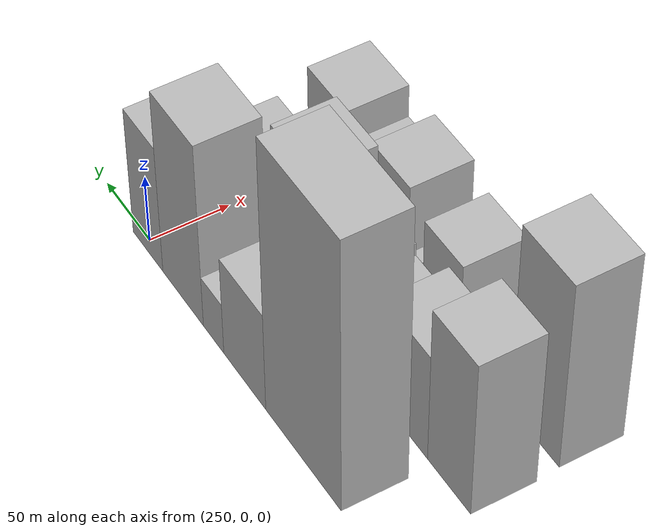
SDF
<sdf version="1.6">
 <world name="default">
  <model name="building_173">
   <static>1</static>
   <pose>265.0000 -174.7765 0 0.000000 0.000000 0.000000</pose>
   <link name="link">
    <pose>0 0 102.00 0 0 0</pose>
    <collision name="collision"><geometry><box><size>40.0000 76.4953 204.0000</size></box></geometry></collision>
    <visual name="visual">
     <cast_shadows>0</cast_shadows>
     <geometry><box><size>40.0000 76.4953 204.0000</size></box></geometry>
     <material>
      <script>
       <uri>model://HANNAS_wall/materials/scripts</uri>
       <uri>model://HANNAS_wall/materials/textures</uri>
       <name>vrc/HANNAS_wall</name>
      </script>
     </material>
    </visual>
   </link>
  </model>
  <model name="building_174">
   <static>1</static>
   <pose>265.0000 -114.1922 0 0.000000 0.000000 0.000000</pose>
   <link name="link">
    <pose>0 0 37.50 0 0 0</pose>
    <collision name="collision"><geometry><box><size>40.0000 44.6733 75.0000</size></box></geometry></collision>
    <visual name="visual">
     <cast_shadows>0</cast_shadows>
     <geometry><box><size>40.0000 44.6733 75.0000</size></box></geometry>
     <material>
      <script>
       <uri>model://HANNAS_wall/materials/scripts</uri>
       <uri>model://HANNAS_wall/materials/textures</uri>
       <name>vrc/HANNAS_wall</name>
      </script>
     </material>
    </visual>
   </link>
  </model>
  <model name="building_175">
   <static>1</static>
   <pose>265.0000 -80.7296 0 0.000000 0.000000 0.000000</pose>
   <link name="link">
    <pose>0 0 19.50 0 0 0</pose>
    <collision name="collision"><geometry><box><size>40.0000 22.2520 39.0000</size></box></geometry></collision>
    <visual name="visual">
     <cast_shadows>0</cast_shadows>
     <geometry><box><size>40.0000 22.2520 39.0000</size></box></geometry>
     <material>
      <script>
       <uri>model://HANNAS_wall/materials/scripts</uri>
       <uri>model://HANNAS_wall/materials/textures</uri>
       <name>vrc/HANNAS_wall</name>
      </script>
     </material>
    </visual>
   </link>
  </model>
  <model name="building_176">
   <static>1</static>
   <pose>265.0000 -46.8801 0 0.000000 0.000000 0.000000</pose>
   <link name="link">
    <pose>0 0 69.00 0 0 0</pose>
    <collision name="collision"><geometry><box><size>40.0000 45.4469 138.0000</size></box></geometry></collision>
    <visual name="visual">
     <cast_shadows>0</cast_shadows>
     <geometry><box><size>40.0000 45.4469 138.0000</size></box></geometry>
     <material>
      <script>
       <uri>model://HANNAS_wall/materials/scripts</uri>
       <uri>model://HANNAS_wall/materials/textures</uri>
       <name>vrc/HANNAS_wall</name>
      </script>
     </material>
    </visual>
   </link>
  </model>
  <model name="building_177">
   <static>1</static>
   <pose>265.0000 -7.0265 0 0.000000 0.000000 0.000000</pose>
   <link name="link">
    <pose>0 0 48.00 0 0 0</pose>
    <collision name="collision"><geometry><box><size>40.0000 34.2604 96.0000</size></box></geometry></collision>
    <visual name="visual">
     <cast_shadows>0</cast_shadows>
     <geometry><box><size>40.0000 34.2604 96.0000</size></box></geometry>
     <material>
      <script>
       <uri>model://HANNAS_wall/materials/scripts</uri>
       <uri>model://HANNAS_wall/materials/textures</uri>
       <name>vrc/HANNAS_wall</name>
      </script>
     </material>
    </visual>
   </link>
  </model>
  <model name="building_225">
   <static>1</static>
   <pose>320.0000 -228.0271 0 0.000000 0.000000 0.000000</pose>
   <link name="link">
    <pose>0 0 58.50 0 0 0</pose>
    <collision name="collision"><geometry><box><size>40.0000 41.0480 117.0000</size></box></geometry></collision>
    <visual name="visual">
     <cast_shadows>0</cast_shadows>
     <geometry><box><size>40.0000 41.0480 117.0000</size></box></geometry>
     <material>
      <script>
       <uri>model://HANNAS_wall/materials/scripts</uri>
       <uri>model://HANNAS_wall/materials/textures</uri>
       <name>vrc/HANNAS_wall</name>
      </script>
     </material>
    </visual>
   </link>
  </model>
  <model name="building_226">
   <static>1</static>
   <pose>320.0000 -184.4851 0 0.000000 0.000000 0.000000</pose>
   <link name="link">
    <pose>0 0 40.50 0 0 0</pose>
    <collision name="collision"><geometry><box><size>40.0000 46.0360 81.0000</size></box></geometry></collision>
    <visual name="visual">
     <cast_shadows>0</cast_shadows>
     <geometry><box><size>40.0000 46.0360 81.0000</size></box></geometry>
     <material>
      <script>
       <uri>model://HANNAS_wall/materials/scripts</uri>
       <uri>model://HANNAS_wall/materials/textures</uri>
       <name>vrc/HANNAS_wall</name>
      </script>
     </material>
    </visual>
   </link>
  </model>
  <model name="building_227">
   <static>1</static>
   <pose>320.0000 -145.9208 0 0.000000 0.000000 0.000000</pose>
   <link name="link">
    <pose>0 0 30.00 0 0 0</pose>
    <collision name="collision"><geometry><box><size>40.0000 31.0925 60.0000</size></box></geometry></collision>
    <visual name="visual">
     <cast_shadows>0</cast_shadows>
     <geometry><box><size>40.0000 31.0925 60.0000</size></box></geometry>
     <material>
      <script>
       <uri>model://HANNAS_wall/materials/scripts</uri>
       <uri>model://HANNAS_wall/materials/textures</uri>
       <name>vrc/HANNAS_wall</name>
      </script>
     </material>
    </visual>
   </link>
  </model>
  <model name="building_228">
   <static>1</static>
   <pose>320.0000 -111.3155 0 0.000000 0.000000 0.000000</pose>
   <link name="link">
    <pose>0 0 34.50 0 0 0</pose>
    <collision name="collision"><geometry><box><size>40.0000 38.1181 69.0000</size></box></geometry></collision>
    <visual name="visual">
     <cast_shadows>0</cast_shadows>
     <geometry><box><size>40.0000 38.1181 69.0000</size></box></geometry>
     <material>
      <script>
       <uri>model://HANNAS_wall/materials/scripts</uri>
       <uri>model://HANNAS_wall/materials/textures</uri>
       <name>vrc/HANNAS_wall</name>
      </script>
     </material>
    </visual>
   </link>
  </model>
  <model name="building_229">
   <static>1</static>
   <pose>320.0000 -71.3849 0 0.000000 0.000000 0.000000</pose>
   <link name="link">
    <pose>0 0 54.00 0 0 0</pose>
    <collision name="collision"><geometry><box><size>40.0000 41.7433 108.0000</size></box></geometry></collision>
    <visual name="visual">
     <cast_shadows>0</cast_shadows>
     <geometry><box><size>40.0000 41.7433 108.0000</size></box></geometry>
     <material>
      <script>
       <uri>model://HANNAS_wall/materials/scripts</uri>
       <uri>model://HANNAS_wall/materials/textures</uri>
       <name>vrc/HANNAS_wall</name>
      </script>
     </material>
    </visual>
   </link>
  </model>
  <model name="building_230">
   <static>1</static>
   <pose>320.0000 -37.9559 0 0.000000 0.000000 0.000000</pose>
   <link name="link">
    <pose>0 0 24.00 0 0 0</pose>
    <collision name="collision"><geometry><box><size>40.0000 25.1147 48.0000</size></box></geometry></collision>
    <visual name="visual">
     <cast_shadows>0</cast_shadows>
     <geometry><box><size>40.0000 25.1147 48.0000</size></box></geometry>
     <material>
      <script>
       <uri>model://HANNAS_wall/materials/scripts</uri>
       <uri>model://HANNAS_wall/materials/textures</uri>
       <name>vrc/HANNAS_wall</name>
      </script>
     </material>
    </visual>
   </link>
  </model>
  <model name="building_231">
   <static>1</static>
   <pose>320.0000 -2.0353 0 0.000000 0.000000 0.000000</pose>
   <link name="link">
    <pose>0 0 27.00 0 0 0</pose>
    <collision name="collision"><geometry><box><size>40.0000 30.7263 54.0000</size></box></geometry></collision>
    <visual name="visual">
     <cast_shadows>0</cast_shadows>
     <geometry><box><size>40.0000 30.7263 54.0000</size></box></geometry>
     <material>
      <script>
       <uri>model://HANNAS_wall/materials/scripts</uri>
       <uri>model://HANNAS_wall/materials/textures</uri>
       <name>vrc/HANNAS_wall</name>
      </script>
     </material>
    </visual>
   </link>
  </model>
  <model name="building_275">
   <static>1</static>
   <pose>375.0000 -223.9881 0 0.000000 0.000000 0.000000</pose>
   <link name="link">
    <pose>0 0 70.50 0 0 0</pose>
    <collision name="collision"><geometry><box><size>40.0000 45.9052 141.0000</size></box></geometry></collision>
    <visual name="visual">
     <cast_shadows>0</cast_shadows>
     <geometry><box><size>40.0000 45.9052 141.0000</size></box></geometry>
     <material>
      <script>
       <uri>model://HANNAS_wall/materials/scripts</uri>
       <uri>model://HANNAS_wall/materials/textures</uri>
       <name>vrc/HANNAS_wall</name>
      </script>
     </material>
    </visual>
   </link>
  </model>
  <model name="building_276">
   <static>1</static>
   <pose>375.0000 -180.3613 0 0.000000 0.000000 0.000000</pose>
   <link name="link">
    <pose>0 0 19.50 0 0 0</pose>
    <collision name="collision"><geometry><box><size>40.0000 21.3482 39.0000</size></box></geometry></collision>
    <visual name="visual">
     <cast_shadows>0</cast_shadows>
     <geometry><box><size>40.0000 21.3482 39.0000</size></box></geometry>
     <material>
      <script>
       <uri>model://HANNAS_wall/materials/scripts</uri>
       <uri>model://HANNAS_wall/materials/textures</uri>
       <name>vrc/HANNAS_wall</name>
      </script>
     </material>
    </visual>
   </link>
  </model>
  <model name="building_277">
   <static>1</static>
   <pose>375.0000 -164.5327 0 0.000000 0.000000 0.000000</pose>
   <link name="link">
    <pose>0 0 10.50 0 0 0</pose>
    <collision name="collision"><geometry><box><size>40.0000 10.3090 21.0000</size></box></geometry></collision>
    <visual name="visual">
     <cast_shadows>0</cast_shadows>
     <geometry><box><size>40.0000 10.3090 21.0000</size></box></geometry>
     <material>
      <script>
       <uri>model://HANNAS_wall/materials/scripts</uri>
       <uri>model://HANNAS_wall/materials/textures</uri>
       <name>vrc/HANNAS_wall</name>
      </script>
     </material>
    </visual>
   </link>
  </model>
  <model name="building_278">
   <static>1</static>
   <pose>375.0000 -133.6030 0 0.000000 0.000000 0.000000</pose>
   <link name="link">
    <pose>0 0 31.50 0 0 0</pose>
    <collision name="collision"><geometry><box><size>40.0000 37.5505 63.0000</size></box></geometry></collision>
    <visual name="visual">
     <cast_shadows>0</cast_shadows>
     <geometry><box><size>40.0000 37.5505 63.0000</size></box></geometry>
     <material>
      <script>
       <uri>model://HANNAS_wall/materials/scripts</uri>
       <uri>model://HANNAS_wall/materials/textures</uri>
       <name>vrc/HANNAS_wall</name>
      </script>
     </material>
    </visual>
   </link>
  </model>
  <model name="building_279">
   <static>1</static>
   <pose>375.0000 -104.9557 0 0.000000 0.000000 0.000000</pose>
   <link name="link">
    <pose>0 0 12.00 0 0 0</pose>
    <collision name="collision"><geometry><box><size>40.0000 9.7441 24.0000</size></box></geometry></collision>
    <visual name="visual">
     <cast_shadows>0</cast_shadows>
     <geometry><box><size>40.0000 9.7441 24.0000</size></box></geometry>
     <material>
      <script>
       <uri>model://HANNAS_wall/materials/scripts</uri>
       <uri>model://HANNAS_wall/materials/textures</uri>
       <name>vrc/HANNAS_wall</name>
      </script>
     </material>
    </visual>
   </link>
  </model>
  <model name="building_280">
   <static>1</static>
   <pose>375.0000 -80.4645 0 0.000000 0.000000 0.000000</pose>
   <link name="link">
    <pose>0 0 37.50 0 0 0</pose>
    <collision name="collision"><geometry><box><size>40.0000 39.2384 75.0000</size></box></geometry></collision>
    <visual name="visual">
     <cast_shadows>0</cast_shadows>
     <geometry><box><size>40.0000 39.2384 75.0000</size></box></geometry>
     <material>
      <script>
       <uri>model://HANNAS_wall/materials/scripts</uri>
       <uri>model://HANNAS_wall/materials/textures</uri>
       <name>vrc/HANNAS_wall</name>
      </script>
     </material>
    </visual>
   </link>
  </model>
  <model name="building_281">
   <static>1</static>
   <pose>375.0000 -47.8570 0 0.000000 0.000000 0.000000</pose>
   <link name="link">
    <pose>0 0 25.50 0 0 0</pose>
    <collision name="collision"><geometry><box><size>40.0000 25.9765 51.0000</size></box></geometry></collision>
    <visual name="visual">
     <cast_shadows>0</cast_shadows>
     <geometry><box><size>40.0000 25.9765 51.0000</size></box></geometry>
     <material>
      <script>
       <uri>model://HANNAS_wall/materials/scripts</uri>
       <uri>model://HANNAS_wall/materials/textures</uri>
       <name>vrc/HANNAS_wall</name>
      </script>
     </material>
    </visual>
   </link>
  </model>
  <model name="building_282">
   <static>1</static>
   <pose>375.0000 -14.4987 0 0.000000 0.000000 0.000000</pose>
   <link name="link">
    <pose>0 0 37.50 0 0 0</pose>
    <collision name="collision"><geometry><box><size>40.0000 40.7402 75.0000</size></box></geometry></collision>
    <visual name="visual">
     <cast_shadows>0</cast_shadows>
     <geometry><box><size>40.0000 40.7402 75.0000</size></box></geometry>
     <material>
      <script>
       <uri>model://HANNAS_wall/materials/scripts</uri>
       <uri>model://HANNAS_wall/materials/textures</uri>
       <name>vrc/HANNAS_wall</name>
      </script>
     </material>
    </visual>
   </link>
  </model>
 </world>
</sdf>
